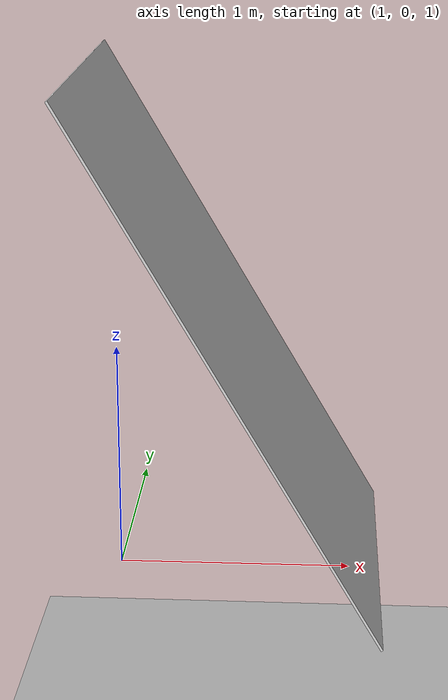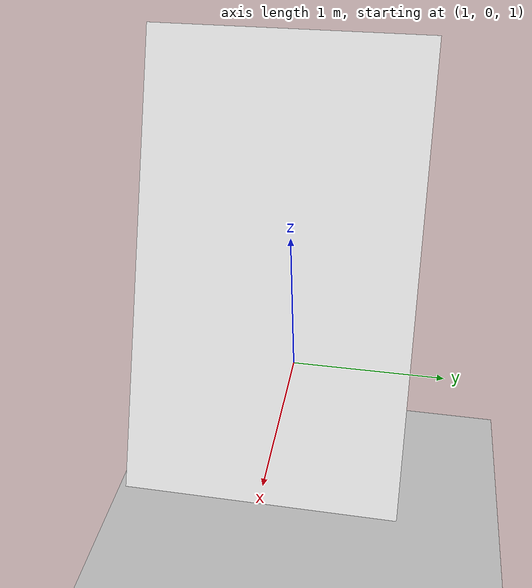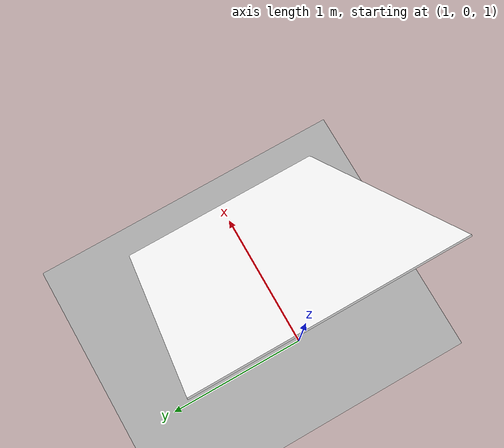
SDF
<?xml version="1.0" ?>
<sdf version="1.5">
  <world name="default">
    <!-- A global light source -->
    <include>
      <uri>model://sun</uri>
    </include>
    <!-- A ground plane -->
    <include>
      <uri>model://GroundPlane_Desert</uri>
    </include>
    <!-- A ceiling plane -->
    <include>
      <uri>model://Plane_60_deg</uri>
    </include>

    <!-- Default camera pose -->
    <gui>
      <camera name="user_camera">

          <pose frame=''>1.5 -6.0 2.25 0 0.12 1.57</pose>

      </camera>
    </gui>
    <physics name='default_physics' default='0' type='bullet'>
      <gravity>0 0 -9.8066</gravity>
      <bullet>
        <solver>
          <type>sequential_impulse</type>
          <iters>50</iters>
          <sor>1.3</sor>
        </solver>
        <constraints>

          <contact_surface_layer>0.0001</contact_surface_layer>
        </constraints>
      </bullet>
      <max_step_size>0.001</max_step_size>
      <real_time_factor>1</real_time_factor>
      <real_time_update_rate>1000</real_time_update_rate>
      <magnetic_field>6e-06 2.3e-05 -4.2e-05</magnetic_field>
    </physics>

    <scene>
      <sky>
        <clouds>
          <speed>0</speed>
        </clouds>
      </sky>
    </scene>

    <!-- Camera for recording video inside of Gazebo environment -->

  </world>
</sdf>

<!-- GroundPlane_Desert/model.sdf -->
<sdf version='1.7'>
  <model name='GroundPlane_Desert'>
    <static>1</static>
    <link name='ground'>
      <pose>0 3.5 0 0 -0 0</pose>
      <inertial>
        <inertia>
          <ixx>506.983</ixx>
          <ixy>0</ixy>
          <ixz>0</ixz>
          <iyy>506.983</iyy>
          <iyz>0</iyz>
          <izz>1013.33</izz>
        </inertia>
        <mass>1520</mass>
        <pose>0 0 0 0 -0 0</pose>
      </inertial>
      <self_collide>0</self_collide>
      <enable_wind>0</enable_wind>
      <kinematic>0</kinematic>
      <gravity>0</gravity>
      <visual name='ground_visual'>
        <cast_shadows>0</cast_shadows>
        <geometry>
          <box>
            <size>10 10 0.01</size>
          </box>
        </geometry>
        <material>
          <script>
            <uri>model://GroundPlane_Desert/materials/scripts</uri>
            <uri>model://GroundPlane_Desert/materials/textures</uri>
            <name>groundMat/Dirt</name>
          </script>
          <shader type='pixel'>
            <normal_map>__default__</normal_map>
          </shader>
        </material>
        <pose>0 0 0 0 -0 0</pose>
      </visual>
      <collision name='ground_collision'>
        <laser_retro>0</laser_retro>
        <max_contacts>10</max_contacts>
        <pose>0 0 0 0 -0 0</pose>
        <geometry>
          <box>
            <size>30 30 0.05</size>
          </box>
        </geometry>
        <surface>
          <friction>
            <ode>
              <mu>100000</mu>
              <mu2>100000</mu2>
              <fdir1>0 0 0</fdir1>
              <slip1>0</slip1>
              <slip2>0</slip2>
            </ode>
            <torsional>
              <coefficient>1</coefficient>
              <patch_radius>0</patch_radius>
              <surface_radius>0</surface_radius>
              <use_patch_radius>1</use_patch_radius>
              <ode>
                <slip>0</slip>
              </ode>
            </torsional>
          </friction>
          <bounce>
            <restitution_coefficient>0</restitution_coefficient>
            <threshold>1e+06</threshold>
          </bounce>
          <contact>
            <collide_without_contact>0</collide_without_contact>
            <collide_without_contact_bitmask>1</collide_without_contact_bitmask>
            <collide_bitmask>65535</collide_bitmask>
            <ode>
              <soft_cfm>0</soft_cfm>
              <soft_erp>0.2</soft_erp>
              <kp>1e+13</kp>
              <kd>1</kd>
              <max_vel>0.01</max_vel>
              <min_depth>0</min_depth>
            </ode>
            <bullet>
              <split_impulse>1</split_impulse>
              <split_impulse_penetration_threshold>-0.01</split_impulse_penetration_threshold>
              <soft_cfm>0</soft_cfm>
              <soft_erp>0.2</soft_erp>
              <kp>1e+13</kp>
              <kd>1</kd>
            </bullet>
          </contact>
        </surface>
      </collision>
    </link>
    <static>0</static>
    <allow_auto_disable>1</allow_auto_disable>
  </model>
</sdf>

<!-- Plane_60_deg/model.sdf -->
<sdf version='1.7'>
  <model name='Plane_60_deg'>
    <link name='ceiling'>
      <pose>0 0 2.1 0 -0 0</pose>
      <inertial>
        <inertia>
          <ixx>506.983</ixx>
          <ixy>0</ixy>
          <ixz>0</ixz>
          <iyy>506.983</iyy>
          <iyz>0</iyz>
          <izz>1013.33</izz>
        </inertia>
        <mass>1520</mass>
        <pose>0 0 0 0 -0 0</pose>
      </inertial>
      <self_collide>0</self_collide>
      <enable_wind>0</enable_wind>
      <kinematic>0</kinematic>
      <gravity>1</gravity>
      <sensor name='ceiling_contact_sensor' type='contact'>
        <always_on>1</always_on>
        <visualize>1</visualize>
        <contact>
          <collision>ceiling_collision</collision>
          <topic>__default_topic__</topic>
        </contact>
        <plugin name='contact_plugin' filename='libgazebo_ros_bumper.so'>
          <bumperTopicName>ceiling_contact</bumperTopicName>
          <frameName>ceiling</frameName>
          <alwaysOn>1</alwaysOn>
          <updateRate>1000</updateRate>
        </plugin>
        <pose>0 0 0 0 -0 0</pose>
      </sensor>
      <visual name='ceiling_visual'>
        <cast_shadows>0</cast_shadows>
        <geometry>
          <box>
            <size>2.5 1.5 0.01</size>
          </box>
        </geometry>
        <material>
          <script>
            <uri>model://FlightCage/materials/scripts</uri>
            <uri>model://FlightCage/materials/textures</uri>
            <name>ceilingMat/Checkerboard</name>
          </script>
          <shader type='pixel'>
            <normal_map>__default__</normal_map>
          </shader>
          <ambient>1 1 1 1</ambient>
          <diffuse>1 1 1 1</diffuse>
          <specular>0 0 0 1</specular>
          <emissive>0 0 0 1</emissive>
        </material>
        <pose>1.5 0 0 0 1.047 0</pose>
        <transparency>0</transparency>
      </visual>
      <collision name='ceiling_collision'>
        <laser_retro>0</laser_retro>
        <max_contacts>10</max_contacts>
        <pose>1.5 0 0 0 1.047 0</pose>
        <geometry>
          <box>
            <size>2.5 1.5 0.01</size>
          </box>
        </geometry>
        <surface>
          <friction>
            <ode>
              <mu>100000</mu>
              <mu2>100000</mu2>
              <fdir1>0 0 0</fdir1>
              <slip1>0</slip1>
              <slip2>0</slip2>
            </ode>
            <torsional>
              <coefficient>1</coefficient>
              <patch_radius>0</patch_radius>
              <surface_radius>0</surface_radius>
              <use_patch_radius>1</use_patch_radius>
              <ode>
                <slip>0</slip>
              </ode>
            </torsional>
          </friction>
          <bounce>
            <restitution_coefficient>0</restitution_coefficient>
            <threshold>1e+06</threshold>
          </bounce>
          <contact>
            <collide_without_contact>0</collide_without_contact>
            <collide_without_contact_bitmask>1</collide_without_contact_bitmask>
            <collide_bitmask>65535</collide_bitmask>
            <ode>
              <soft_cfm>0</soft_cfm>
              <soft_erp>0.2</soft_erp>
              <kp>1e+13</kp>
              <kd>1</kd>
              <max_vel>0.01</max_vel>
              <min_depth>0</min_depth>
            </ode>
            <bullet>
              <split_impulse>1</split_impulse>
              <split_impulse_penetration_threshold>-0.01</split_impulse_penetration_threshold>
              <soft_cfm>0</soft_cfm>
              <soft_erp>0.2</soft_erp>
              <kp>1e+13</kp>
              <kd>1</kd>
            </bullet>
          </contact>
        </surface>
      </collision>
    </link>
    <joint name="ceiling_joint" type="fixed">
      <parent>world</parent>
      <child>ceiling</child>
      <pose>0 0 0 0 0 0</pose>
      <physics>
        <ode>
        </ode>
      </physics>
      <sensor name="force_torque" type="force_torque">
        <always_on>true</always_on>
        <update_rate>1000</update_rate>
      </sensor>
    </joint>
    <static>0</static>
    <allow_auto_disable>1</allow_auto_disable>
  </model>
</sdf>
